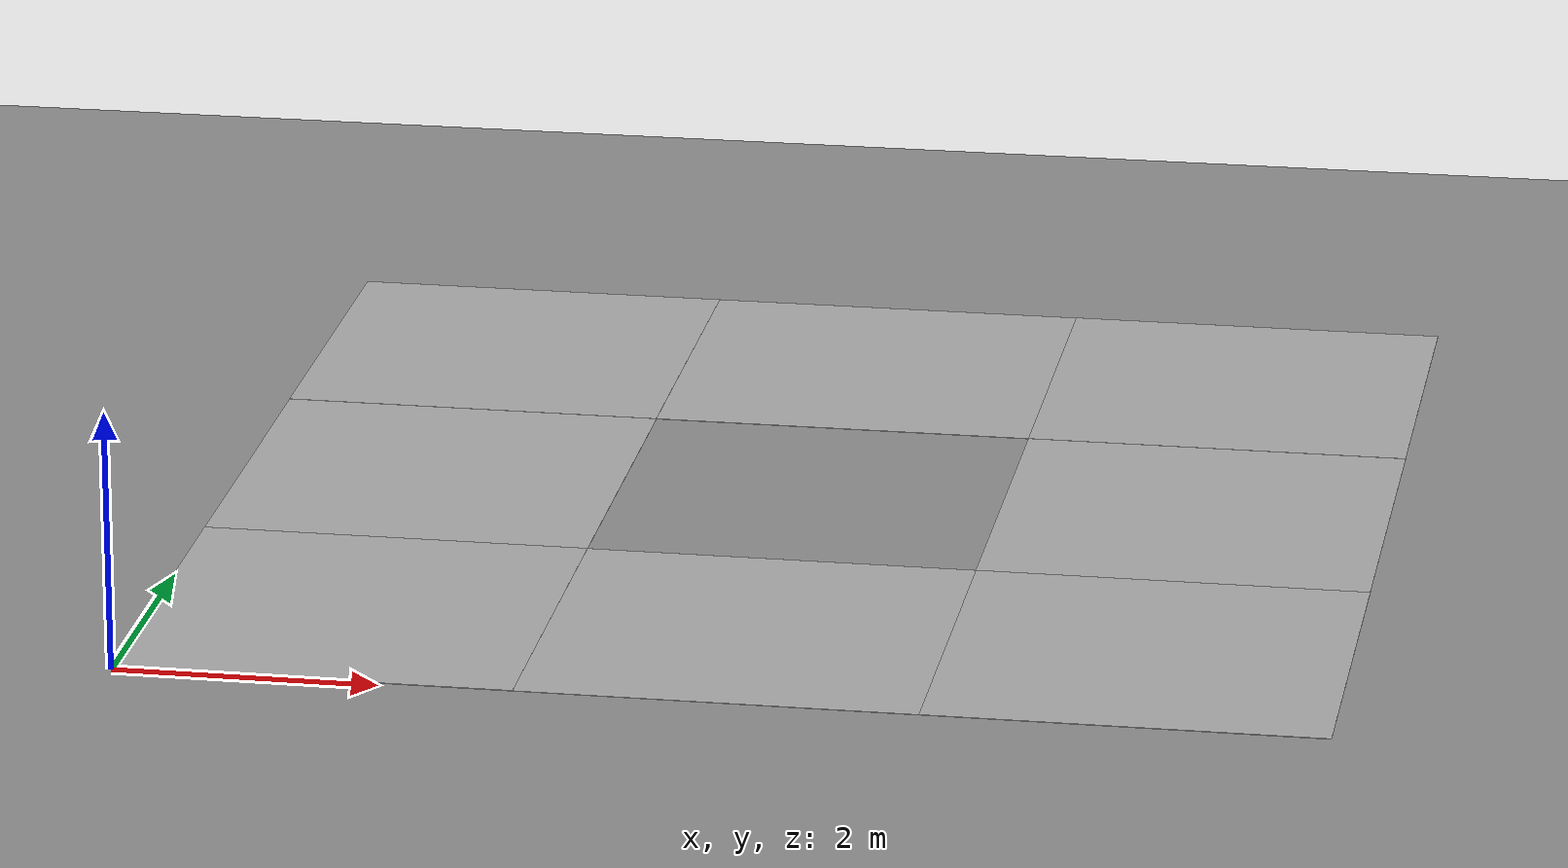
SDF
<sdf version="1.7">
 <world name="road test">
  <scene>
   <ambient>120 120 120 255</ambient>
   <sky><clouds><speed>12</speed></clouds><time>13</time></sky>
   <background>0.7 0.7 0.7 1</background>
   <shadows>1</shadows>
  </scene>
  <model name="road_intersection_0_0">
   <frame name="road_intersection::__model__" attached_to="road_intersection::link">
    <pose relative_to="__model__">1.5 1.5 0.02 0 -0 1.57</pose>
   </frame>
   <static>1</static>
   <link name="road_intersection::link">
    <collision name="collision">
     <geometry><plane><normal>0 0 1</normal><size>3 3</size></plane></geometry>
     <surface><friction><ode><mu>75</mu><mu2>75</mu2></ode></friction></surface>
    </collision>
    <visual name="visual">
     <cast_shadows>0</cast_shadows>
     <geometry><plane><normal>0 0 1</normal><size>3 3</size></plane></geometry>
     <material>
      <script>
       <uri>model://road_intersection/materials/scripts</uri>
       <uri>model://road_intersection/materials/textures</uri>
       <name>road_intersection/Image</name>
      </script>
     </material>
    </visual>
    <pose relative_to="road_intersection::__model__">0 0 0 0 -0 0</pose>
   </link>
  </model>
  <model name="road_straight_0_1">
   <frame name="road_straight::__model__" attached_to="road_straight::link">
    <pose relative_to="__model__">1.5 4.5 0.02 0 -0 1.57</pose>
   </frame>
   <static>1</static>
   <link name="road_straight::link">
    <collision name="collision">
     <geometry><plane><normal>0 0 1</normal><size>3 3</size></plane></geometry>
     <surface><friction><ode><mu>75</mu><mu2>75</mu2></ode></friction></surface>
    </collision>
    <visual name="visual">
     <cast_shadows>0</cast_shadows>
     <geometry><plane><normal>0 0 1</normal><size>3 3</size></plane></geometry>
     <material>
      <script>
       <uri>model://road_straight/materials/scripts</uri>
       <uri>model://road_straight/materials/textures</uri>
       <name>road_straight/Image</name>
      </script>
     </material>
    </visual>
    <pose relative_to="road_straight::__model__">0 0 0 0 -0 0</pose>
   </link>
  </model>
  <model name="road_curb0_1">
   <frame name="curb2::__model__" attached_to="curb2::Wall_0">
    <pose relative_to="__model__">1.5 4.5 0.02 0 -0 1.57</pose>
   </frame>
   <link name="curb2::Wall_0">
    <collision name="Wall_0_Collision"><geometry><box><size>3.03 0.05 0.022</size></box></geometry></collision>
    <visual name="Wall_0_Visual">
     <geometry><box><size>3.03 0.05 0.022</size></box></geometry>
     <material>
      <script><uri>file://media/materials/scripts/gazebo.material</uri><name>Gazebo/Grey</name></script>
     </material>
     <transparency>1</transparency>
     <meta><layer>0</layer></meta>
    </visual>
    <pose relative_to="curb2::__model__">0 1.5 0 0 -0 0</pose>
   </link>
   <link name="curb2::Wall_2">
    <collision name="Wall_2_Collision"><geometry><box><size>3.03 0.05 0.022</size></box></geometry></collision>
    <visual name="Wall_2_Visual">
     <geometry><box><size>3.03 0.05 0.022</size></box></geometry>
     <material>
      <script><uri>file://media/materials/scripts/gazebo.material</uri><name>Gazebo/Grey</name></script>
     </material>
     <transparency>1</transparency>
     <meta><layer>0</layer></meta>
    </visual>
    <pose relative_to="curb2::__model__">0 -1.5 0 0 -0 0</pose>
   </link>
   <static>1</static>
  </model>
  <model name="road_intersection_0_2">
   <frame name="road_intersection::__model__" attached_to="road_intersection::link">
    <pose relative_to="__model__">1.5 7.5 0.02 0 -0 1.57</pose>
   </frame>
   <static>1</static>
   <link name="road_intersection::link">
    <collision name="collision">
     <geometry><plane><normal>0 0 1</normal><size>3 3</size></plane></geometry>
     <surface><friction><ode><mu>75</mu><mu2>75</mu2></ode></friction></surface>
    </collision>
    <visual name="visual">
     <cast_shadows>0</cast_shadows>
     <geometry><plane><normal>0 0 1</normal><size>3 3</size></plane></geometry>
     <material>
      <script>
       <uri>model://road_intersection/materials/scripts</uri>
       <uri>model://road_intersection/materials/textures</uri>
       <name>road_intersection/Image</name>
      </script>
     </material>
    </visual>
    <pose relative_to="road_intersection::__model__">0 0 0 0 -0 0</pose>
   </link>
  </model>
  <model name="road_straight_1_0">
   <frame name="road_straight::__model__" attached_to="road_straight::link">
    <pose relative_to="__model__">4.5 1.5 0.02 0 -0 0</pose>
   </frame>
   <static>1</static>
   <link name="road_straight::link">
    <collision name="collision">
     <geometry><plane><normal>0 0 1</normal><size>3 3</size></plane></geometry>
     <surface><friction><ode><mu>75</mu><mu2>75</mu2></ode></friction></surface>
    </collision>
    <visual name="visual">
     <cast_shadows>0</cast_shadows>
     <geometry><plane><normal>0 0 1</normal><size>3 3</size></plane></geometry>
     <material>
      <script>
       <uri>model://road_straight/materials/scripts</uri>
       <uri>model://road_straight/materials/textures</uri>
       <name>road_straight/Image</name>
      </script>
     </material>
    </visual>
    <pose relative_to="road_straight::__model__">0 0 0 0 -0 0</pose>
   </link>
  </model>
  <model name="road_curb1_0">
   <frame name="curb2::__model__" attached_to="curb2::Wall_0">
    <pose relative_to="__model__">4.5 1.5 0.02 0 -0 0</pose>
   </frame>
   <link name="curb2::Wall_0">
    <collision name="Wall_0_Collision"><geometry><box><size>3.03 0.05 0.022</size></box></geometry></collision>
    <visual name="Wall_0_Visual">
     <geometry><box><size>3.03 0.05 0.022</size></box></geometry>
     <material>
      <script><uri>file://media/materials/scripts/gazebo.material</uri><name>Gazebo/Grey</name></script>
     </material>
     <transparency>1</transparency>
     <meta><layer>0</layer></meta>
    </visual>
    <pose relative_to="curb2::__model__">0 1.5 0 0 -0 0</pose>
   </link>
   <link name="curb2::Wall_2">
    <collision name="Wall_2_Collision"><geometry><box><size>3.03 0.05 0.022</size></box></geometry></collision>
    <visual name="Wall_2_Visual">
     <geometry><box><size>3.03 0.05 0.022</size></box></geometry>
     <material>
      <script><uri>file://media/materials/scripts/gazebo.material</uri><name>Gazebo/Grey</name></script>
     </material>
     <transparency>1</transparency>
     <meta><layer>0</layer></meta>
    </visual>
    <pose relative_to="curb2::__model__">0 -1.5 0 0 -0 0</pose>
   </link>
   <static>1</static>
  </model>
  <model name="ground_plane1_1">
   <frame name="ground_plane::__model__" attached_to="ground_plane::link">
    <pose relative_to="__model__">4.5 4.5 0 0 -0 1.57</pose>
   </frame>
   <static>1</static>
   <link name="ground_plane::link">
    <collision name="collision">
     <geometry><plane><normal>0 0 1</normal><size>100 100</size></plane></geometry>
     <surface>
      <contact><collide_bitmask>65535</collide_bitmask></contact>
      <friction><ode><mu>100</mu><mu2>50</mu2></ode></friction>
     </surface>
    </collision>
    <visual name="visual">
     <cast_shadows>0</cast_shadows>
     <geometry><plane><normal>0 0 1</normal><size>100 100</size></plane></geometry>
     <material>
      <script><uri>file://media/materials/scripts/gazebo.material</uri><name>Gazebo/Grey</name></script>
     </material>
    </visual>
    <pose relative_to="ground_plane::__model__">0 0 0 0 -0 0</pose>
   </link>
  </model>
  <model name="road_straight_1_2">
   <frame name="road_straight::__model__" attached_to="road_straight::link">
    <pose relative_to="__model__">4.5 7.5 0.02 0 -0 0</pose>
   </frame>
   <static>1</static>
   <link name="road_straight::link">
    <collision name="collision">
     <geometry><plane><normal>0 0 1</normal><size>3 3</size></plane></geometry>
     <surface><friction><ode><mu>75</mu><mu2>75</mu2></ode></friction></surface>
    </collision>
    <visual name="visual">
     <cast_shadows>0</cast_shadows>
     <geometry><plane><normal>0 0 1</normal><size>3 3</size></plane></geometry>
     <material>
      <script>
       <uri>model://road_straight/materials/scripts</uri>
       <uri>model://road_straight/materials/textures</uri>
       <name>road_straight/Image</name>
      </script>
     </material>
    </visual>
    <pose relative_to="road_straight::__model__">0 0 0 0 -0 0</pose>
   </link>
  </model>
  <model name="road_curb1_2">
   <frame name="curb2::__model__" attached_to="curb2::Wall_0">
    <pose relative_to="__model__">4.5 7.5 0.02 0 -0 0</pose>
   </frame>
   <link name="curb2::Wall_0">
    <collision name="Wall_0_Collision"><geometry><box><size>3.03 0.05 0.022</size></box></geometry></collision>
    <visual name="Wall_0_Visual">
     <geometry><box><size>3.03 0.05 0.022</size></box></geometry>
     <material>
      <script><uri>file://media/materials/scripts/gazebo.material</uri><name>Gazebo/Grey</name></script>
     </material>
     <transparency>1</transparency>
     <meta><layer>0</layer></meta>
    </visual>
    <pose relative_to="curb2::__model__">0 1.5 0 0 -0 0</pose>
   </link>
   <link name="curb2::Wall_2">
    <collision name="Wall_2_Collision"><geometry><box><size>3.03 0.05 0.022</size></box></geometry></collision>
    <visual name="Wall_2_Visual">
     <geometry><box><size>3.03 0.05 0.022</size></box></geometry>
     <material>
      <script><uri>file://media/materials/scripts/gazebo.material</uri><name>Gazebo/Grey</name></script>
     </material>
     <transparency>1</transparency>
     <meta><layer>0</layer></meta>
    </visual>
    <pose relative_to="curb2::__model__">0 -1.5 0 0 -0 0</pose>
   </link>
   <static>1</static>
  </model>
  <model name="road_intersection_2_0">
   <frame name="road_intersection::__model__" attached_to="road_intersection::link">
    <pose relative_to="__model__">7.5 1.5 0.02 0 -0 1.57</pose>
   </frame>
   <static>1</static>
   <link name="road_intersection::link">
    <collision name="collision">
     <geometry><plane><normal>0 0 1</normal><size>3 3</size></plane></geometry>
     <surface><friction><ode><mu>75</mu><mu2>75</mu2></ode></friction></surface>
    </collision>
    <visual name="visual">
     <cast_shadows>0</cast_shadows>
     <geometry><plane><normal>0 0 1</normal><size>3 3</size></plane></geometry>
     <material>
      <script>
       <uri>model://road_intersection/materials/scripts</uri>
       <uri>model://road_intersection/materials/textures</uri>
       <name>road_intersection/Image</name>
      </script>
     </material>
    </visual>
    <pose relative_to="road_intersection::__model__">0 0 0 0 -0 0</pose>
   </link>
  </model>
  <model name="road_straight_2_1">
   <frame name="road_straight::__model__" attached_to="road_straight::link">
    <pose relative_to="__model__">7.5 4.5 0.02 0 -0 1.57</pose>
   </frame>
   <static>1</static>
   <link name="road_straight::link">
    <collision name="collision">
     <geometry><plane><normal>0 0 1</normal><size>3 3</size></plane></geometry>
     <surface><friction><ode><mu>75</mu><mu2>75</mu2></ode></friction></surface>
    </collision>
    <visual name="visual">
     <cast_shadows>0</cast_shadows>
     <geometry><plane><normal>0 0 1</normal><size>3 3</size></plane></geometry>
     <material>
      <script>
       <uri>model://road_straight/materials/scripts</uri>
       <uri>model://road_straight/materials/textures</uri>
       <name>road_straight/Image</name>
      </script>
     </material>
    </visual>
    <pose relative_to="road_straight::__model__">0 0 0 0 -0 0</pose>
   </link>
  </model>
  <model name="road_curb2_1">
   <frame name="curb2::__model__" attached_to="curb2::Wall_0">
    <pose relative_to="__model__">7.5 4.5 0.02 0 -0 1.57</pose>
   </frame>
   <link name="curb2::Wall_0">
    <collision name="Wall_0_Collision"><geometry><box><size>3.03 0.05 0.022</size></box></geometry></collision>
    <visual name="Wall_0_Visual">
     <geometry><box><size>3.03 0.05 0.022</size></box></geometry>
     <material>
      <script><uri>file://media/materials/scripts/gazebo.material</uri><name>Gazebo/Grey</name></script>
     </material>
     <transparency>1</transparency>
     <meta><layer>0</layer></meta>
    </visual>
    <pose relative_to="curb2::__model__">0 1.5 0 0 -0 0</pose>
   </link>
   <link name="curb2::Wall_2">
    <collision name="Wall_2_Collision"><geometry><box><size>3.03 0.05 0.022</size></box></geometry></collision>
    <visual name="Wall_2_Visual">
     <geometry><box><size>3.03 0.05 0.022</size></box></geometry>
     <material>
      <script><uri>file://media/materials/scripts/gazebo.material</uri><name>Gazebo/Grey</name></script>
     </material>
     <transparency>1</transparency>
     <meta><layer>0</layer></meta>
    </visual>
    <pose relative_to="curb2::__model__">0 -1.5 0 0 -0 0</pose>
   </link>
   <static>1</static>
  </model>
  <model name="road_intersection_2_2">
   <frame name="road_intersection::__model__" attached_to="road_intersection::link">
    <pose relative_to="__model__">7.5 7.5 0.02 0 -0 1.57</pose>
   </frame>
   <static>1</static>
   <link name="road_intersection::link">
    <collision name="collision">
     <geometry><plane><normal>0 0 1</normal><size>3 3</size></plane></geometry>
     <surface><friction><ode><mu>75</mu><mu2>75</mu2></ode></friction></surface>
    </collision>
    <visual name="visual">
     <cast_shadows>0</cast_shadows>
     <geometry><plane><normal>0 0 1</normal><size>3 3</size></plane></geometry>
     <material>
      <script>
       <uri>model://road_intersection/materials/scripts</uri>
       <uri>model://road_intersection/materials/textures</uri>
       <name>road_intersection/Image</name>
      </script>
     </material>
    </visual>
    <pose relative_to="road_intersection::__model__">0 0 0 0 -0 0</pose>
   </link>
  </model>
  <light name="sun" type="directional">
   <pose>0 0 10 0 -0 0</pose>
   <diffuse>0.8 0.8 0.8 1</diffuse>
   <specular>0.2 0.2 0.2 1</specular>
   <attenuation>
    <range>1000</range>
    <constant>0.9</constant>
    <linear>0.01</linear>
    <quadratic>0.001</quadratic>
   </attenuation>
   <direction>-0.5 0.1 -0.9</direction>
   <spot><inner_angle>0</inner_angle><outer_angle>0</outer_angle><falloff>0</falloff></spot>
  </light>
  <gravity>0 0 -9.8</gravity>
  <magnetic_field>6e-06 2.3e-05 -4.2e-05</magnetic_field>
  <atmosphere type="adiabatic"/>
  <physics type="ode">
   <max_step_size>0.001</max_step_size>
   <real_time_factor>1</real_time_factor>
   <real_time_update_rate>1000</real_time_update_rate>
  </physics>
  <spherical_coordinates>
   <surface_model>EARTH_WGS84</surface_model>
   <latitude_deg>0</latitude_deg>
   <longitude_deg>0</longitude_deg>
   <elevation>0</elevation>
   <heading_deg>0</heading_deg>
  </spherical_coordinates>
  <model name="road_straight">
   <static>1</static>
   <link name="link">
    <collision name="collision">
     <geometry><plane><normal>0 0 1</normal><size>3 3</size></plane></geometry>
     <surface><friction><ode><mu>75</mu><mu2>75</mu2></ode></friction></surface>
    </collision>
    <visual name="visual">
     <cast_shadows>0</cast_shadows>
     <geometry><plane><normal>0 0 1</normal><size>3 3</size></plane></geometry>
     <material>
      <script>
       <uri>model://road_turn/materials/scripts</uri>
       <uri>model://road_turn/materials/textures</uri>
       <name>road_turn/Image</name>
      </script>
     </material>
    </visual>
   </link>
   <pose>1.5 1.5 0.021 0 0 -1.57</pose>
  </model>
  <model name="road_straight_0">
   <static>1</static>
   <link name="link">
    <collision name="collision">
     <geometry><plane><normal>0 0 1</normal><size>3 3</size></plane></geometry>
     <surface><friction><ode><mu>75</mu><mu2>75</mu2></ode></friction></surface>
    </collision>
    <visual name="visual">
     <cast_shadows>0</cast_shadows>
     <geometry><plane><normal>0 0 1</normal><size>3 3</size></plane></geometry>
     <material>
      <script>
       <uri>model://road_turn/materials/scripts</uri>
       <uri>model://road_turn/materials/textures</uri>
       <name>road_turn/Image</name>
      </script>
     </material>
    </visual>
   </link>
   <pose>7.5 1.5 0.021 0 -0 0</pose>
  </model>
  <model name="road_straight_1">
   <static>1</static>
   <link name="link">
    <collision name="collision">
     <geometry><plane><normal>0 0 1</normal><size>3 3</size></plane></geometry>
     <surface><friction><ode><mu>75</mu><mu2>75</mu2></ode></friction></surface>
    </collision>
    <visual name="visual">
     <cast_shadows>0</cast_shadows>
     <geometry><plane><normal>0 0 1</normal><size>3 3</size></plane></geometry>
     <material>
      <script>
       <uri>model://road_turn/materials/scripts</uri>
       <uri>model://road_turn/materials/textures</uri>
       <name>road_turn/Image</name>
      </script>
     </material>
    </visual>
   </link>
   <pose>7.5 7.5 0.021 0 -0 1.5705</pose>
  </model>
  <model name="road_straight_2">
   <static>1</static>
   <link name="link">
    <collision name="collision">
     <geometry><plane><normal>0 0 1</normal><size>3 3</size></plane></geometry>
     <surface><friction><ode><mu>75</mu><mu2>75</mu2></ode></friction></surface>
    </collision>
    <visual name="visual">
     <cast_shadows>0</cast_shadows>
     <geometry><plane><normal>0 0 1</normal><size>3 3</size></plane></geometry>
     <material>
      <script>
       <uri>model://road_turn/materials/scripts</uri>
       <uri>model://road_turn/materials/textures</uri>
       <name>road_turn/Image</name>
      </script>
     </material>
    </visual>
   </link>
   <pose>1.5 7.5 0.021 0 -0 3.14</pose>
  </model>
 </world>
</sdf>
